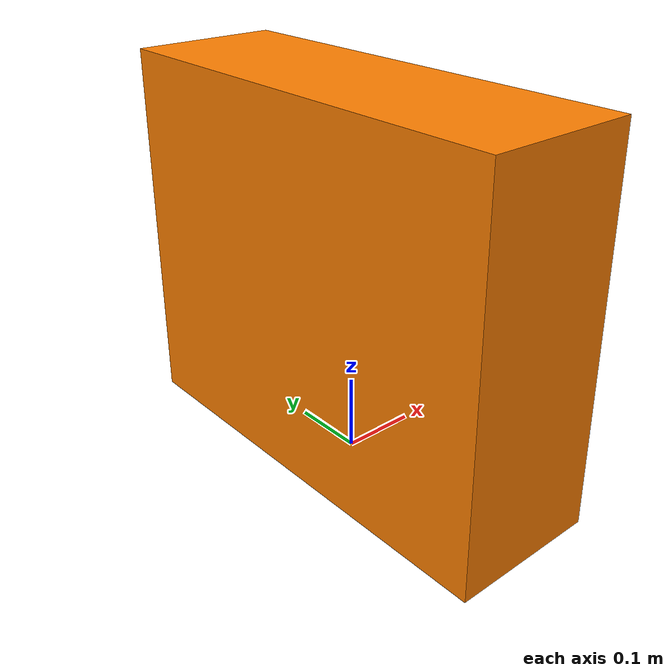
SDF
<?xml version="1.0" ?>
<sdf version="1.6">
  <model name="charging_dock">
    <static>true</static>
    <link name="link">

      <!-- Dock Body (Orange Box) -->
      <visual name="body_visual">
        <pose>0 0 0.25 0 0 0</pose>
        <geometry>
          <box>
            <size>0.2 0.6 0.5</size>
          </box>
        </geometry>
        <material>
          <ambient>1 0.5 0 1</ambient>
          <diffuse>1 0.5 0 1</diffuse>
          <specular>0.1 0.1 0.1 1</specular>
        </material>
      </visual>
      <collision name="body_collision">
        <pose>0 0 0.25 0 0 0</pose>
        <geometry>
          <box>
            <size>0.2 0.6 0.5</size>
          </box>
        </geometry>
      </collision>

      <!-- ArUco Tag Plate (White Plate + Texture) -->
      <visual name="tag_visual">
        <!-- Positioned on the front face (x = 0.1 + small offset), height centered at camera level (~0.26m) -->
        <pose>0.101 0 0.26 0 0 0</pose> <!-- rpy 0 0 0 facing +X -->
        <geometry>
          <box>
            <size>0.01 0.2 0.2</size> <!-- Flat plate -->
          </box>
        </geometry>
        <material>
          <ambient>1 1 1 1</ambient>
          <diffuse>1 1 1 1</diffuse>
          <pbr>
            <metal>
              <albedo_map>model://charging_dock/materials/textures/apriltag_36h11_0.png</albedo_map>
            </metal>
          </pbr>
        </material>
      </visual>

    </link>
  </model>
</sdf>
